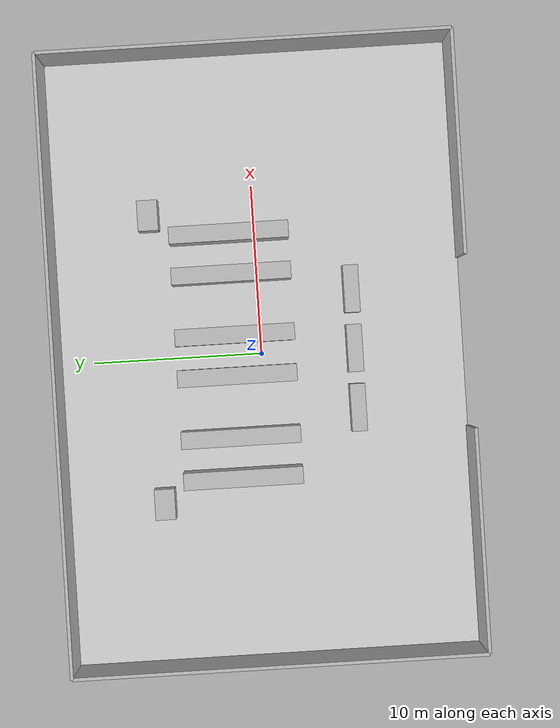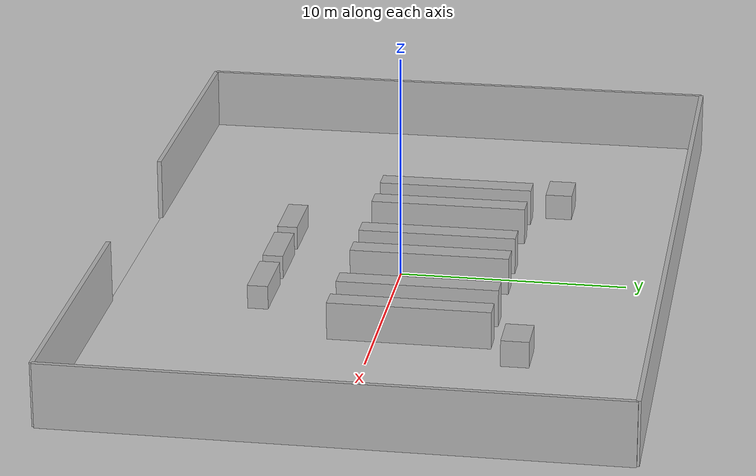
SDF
<sdf version="1.9">
 <world name="carucior_world">
  <plugin filename="gz-sim-user-commands-system" name="gz::sim::systems::UserCommands"/>
  <plugin filename="gz-sim-physics-system" name="gz::sim::systems::Physics"/>
  <plugin filename="gz-sim-scene-broadcaster-system" name="gz::sim::systems::SceneBroadcaster"/>
  <plugin filename="gz-sim-sensors-system" name="gz::sim::systems::Sensors">
   <render_engine>ogre2</render_engine>
  </plugin>
  <include><uri>https://fuel.gazebosim.org/1.0/OpenRobotics/models/Sun</uri></include>
  <model name="market_floor">
   <static>true</static>
   <pose>0 0 0.02 0 0 0</pose>
   <link name="floor_link">
    <collision name="floor_collision"><geometry><box><size>36 24 0.04</size></box></geometry></collision>
    <visual name="floor_visual">
     <geometry><box><size>36 24 0.04</size></box></geometry>
     <material><ambient>0.75 0.75 0.75 1</ambient><diffuse>0.8 0.8 0.8 1</diffuse></material>
    </visual>
   </link>
  </model>
  <model name="wall_back">
   <static>true</static>
   <pose>0 12 1.4 0 0 0</pose>
   <link name="link">
    <collision name="collision"><geometry><box><size>36 0.2 2.8</size></box></geometry></collision>
    <visual name="visual"><geometry><box><size>36 0.2 2.8</size></box></geometry></visual>
   </link>
  </model>
  <model name="wall_left">
   <static>true</static>
   <pose>-18 0 1.4 0 0 0</pose>
   <link name="link">
    <collision name="collision"><geometry><box><size>0.2 24 2.8</size></box></geometry></collision>
    <visual name="visual"><geometry><box><size>0.2 24 2.8</size></box></geometry></visual>
   </link>
  </model>
  <model name="wall_right">
   <static>true</static>
   <pose>18 0 1.4 0 0 0</pose>
   <link name="link">
    <collision name="collision"><geometry><box><size>0.2 24 2.8</size></box></geometry></collision>
    <visual name="visual"><geometry><box><size>0.2 24 2.8</size></box></geometry></visual>
   </link>
  </model>
  <model name="wall_front_left">
   <static>true</static>
   <pose>-11.5 -12 1.4 0 0 0</pose>
   <link name="link">
    <collision name="collision"><geometry><box><size>13 0.2 2.8</size></box></geometry></collision>
    <visual name="visual"><geometry><box><size>13 0.2 2.8</size></box></geometry></visual>
   </link>
  </model>
  <model name="wall_front_right">
   <static>true</static>
   <pose>11.5 -12 1.4 0 0 0</pose>
   <link name="link">
    <collision name="collision"><geometry><box><size>13 0.2 2.8</size></box></geometry></collision>
    <visual name="visual"><geometry><box><size>13 0.2 2.8</size></box></geometry></visual>
   </link>
  </model>
  <model name="checkout_1">
   <static>true</static>
   <pose>-3.5 -5.5 0.55 0 0 0</pose>
   <link name="link">
    <collision name="collision"><geometry><box><size>2.8 0.9 1.1</size></box></geometry></collision>
    <visual name="visual"><geometry><box><size>2.8 0.9 1.1</size></box></geometry></visual>
   </link>
  </model>
  <model name="checkout_2">
   <static>true</static>
   <pose>0 -5.5 0.55 0 0 0</pose>
   <link name="link">
    <collision name="collision"><geometry><box><size>2.8 0.9 1.1</size></box></geometry></collision>
    <visual name="visual"><geometry><box><size>2.8 0.9 1.1</size></box></geometry></visual>
   </link>
  </model>
  <model name="checkout_3">
   <static>true</static>
   <pose>3.5 -5.5 0.55 0 0 0</pose>
   <link name="link">
    <collision name="collision"><geometry><box><size>2.8 0.9 1.1</size></box></geometry></collision>
    <visual name="visual"><geometry><box><size>2.8 0.9 1.1</size></box></geometry></visual>
   </link>
  </model>
  <model name="shelf_a1_left">
   <static>true</static>
   <pose>-7.2 1.5 0.85 0 0 0</pose>
   <link name="link">
    <collision name="collision"><geometry><box><size>1.0 7.0 1.7</size></box></geometry></collision>
    <visual name="visual"><geometry><box><size>1.0 7.0 1.7</size></box></geometry></visual>
   </link>
  </model>
  <model name="shelf_a1_right">
   <static>true</static>
   <pose>-4.8 1.5 0.85 0 0 0</pose>
   <link name="link">
    <collision name="collision"><geometry><box><size>1.0 7.0 1.7</size></box></geometry></collision>
    <visual name="visual"><geometry><box><size>1.0 7.0 1.7</size></box></geometry></visual>
   </link>
  </model>
  <model name="shelf_a2_left">
   <static>true</static>
   <pose>-1.2 1.5 0.85 0 0 0</pose>
   <link name="link">
    <collision name="collision"><geometry><box><size>1.0 7.0 1.7</size></box></geometry></collision>
    <visual name="visual"><geometry><box><size>1.0 7.0 1.7</size></box></geometry></visual>
   </link>
  </model>
  <model name="shelf_a2_right">
   <static>true</static>
   <pose>1.2 1.5 0.85 0 0 0</pose>
   <link name="link">
    <collision name="collision"><geometry><box><size>1.0 7.0 1.7</size></box></geometry></collision>
    <visual name="visual"><geometry><box><size>1.0 7.0 1.7</size></box></geometry></visual>
   </link>
  </model>
  <model name="shelf_a3_left">
   <static>true</static>
   <pose>4.8 1.5 0.85 0 0 0</pose>
   <link name="link">
    <collision name="collision"><geometry><box><size>1.0 7.0 1.7</size></box></geometry></collision>
    <visual name="visual"><geometry><box><size>1.0 7.0 1.7</size></box></geometry></visual>
   </link>
  </model>
  <model name="shelf_a3_right">
   <static>true</static>
   <pose>7.2 1.5 0.85 0 0 0</pose>
   <link name="link">
    <collision name="collision"><geometry><box><size>1.0 7.0 1.7</size></box></geometry></collision>
    <visual name="visual"><geometry><box><size>1.0 7.0 1.7</size></box></geometry></visual>
   </link>
  </model>
  <model name="promo_island_1">
   <static>true</static>
   <pose>-8.5 6.2 0.6 0 0 0</pose>
   <link name="link">
    <collision name="collision"><geometry><box><size>1.8 1.2 1.2</size></box></geometry></collision>
    <visual name="visual"><geometry><box><size>1.8 1.2 1.2</size></box></geometry></visual>
   </link>
  </model>
  <model name="promo_island_2">
   <static>true</static>
   <pose>8.5 6.2 0.6 0 0 0</pose>
   <link name="link">
    <collision name="collision"><geometry><box><size>1.8 1.2 1.2</size></box></geometry></collision>
    <visual name="visual"><geometry><box><size>1.8 1.2 1.2</size></box></geometry></visual>
   </link>
  </model>
 </world>
</sdf>
